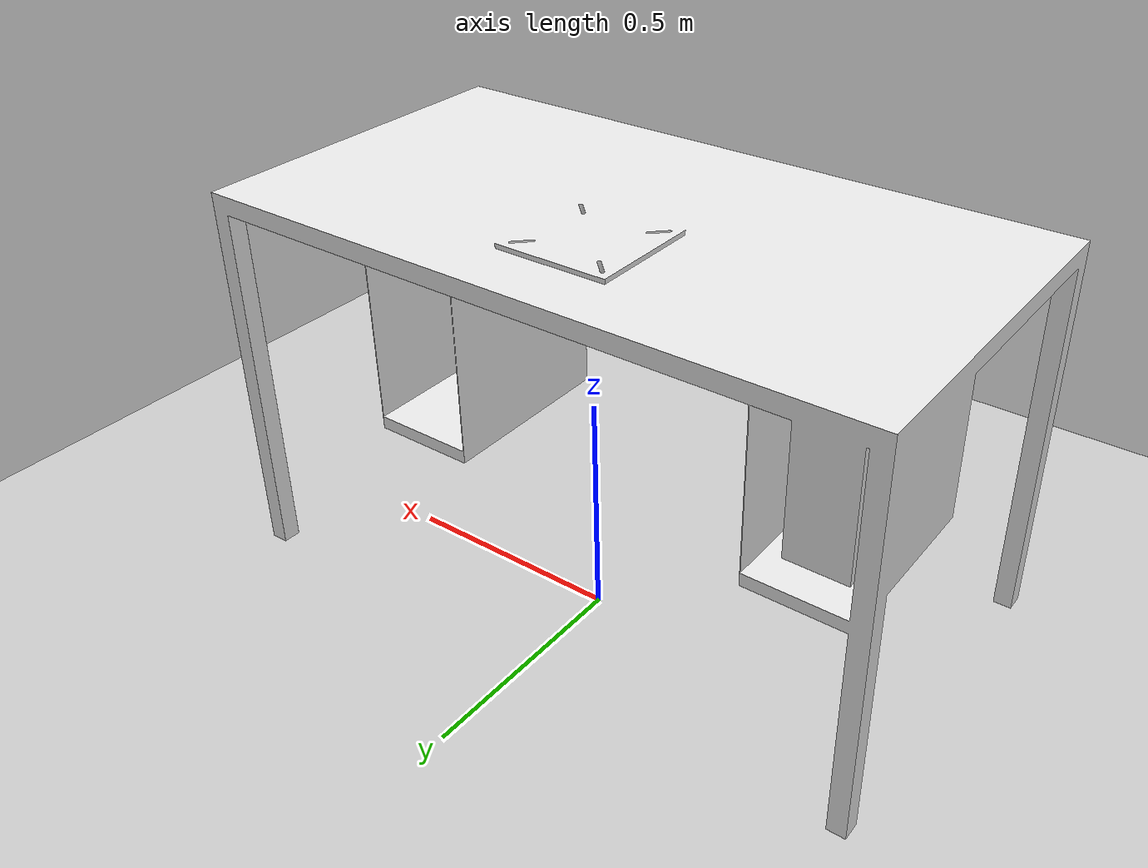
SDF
<?xml version="1.0" ?>
<sdf version="1.5">
  <world name="my_world">
    <include>
      <uri>model://ground_plane</uri>
    </include>

    <model name="mesa">
      <pose>0.755 0.26 0 0 0 3.1416</pose>
      <static>true</static>
      <link name="base_link">
        <inertial>
          <mass>1.0</mass>
          <inertia>
            <ixx>0.166666666667</ixx>
            <ixy>0.0</ixy>
            <ixz>0.0</ixz>
            <iyy>0.166666666667</iyy>
            <iyz>0.0</iyz>
            <izz>0.166666666667</izz>
          </inertia>
        </inertial>
        <visual name="visual">
          <geometry>
             <mesh>
               <uri>model://mesa/meshes/mesaDobot.stl</uri>
             <scale>0.001 0.001 0.001</scale>
          </mesh>
          </geometry>
          <material>
            <script>
              <uri>file://media/materials/scripts/gazebo.material</uri>
              <name>Gazebo/White</name>
            </script>
          </material>
        </visual>
        <collision name="collision">
          <pose>0.75 0.4 0.43 0 0 1.57</pose>
          <geometry>
            <box>
              <size>0.80 1.5 0.86</size>
            </box>
          </geometry>
        </collision>
      </link>
    </model>

    <light name='sun' type='directional'>
      <cast_shadows>1</cast_shadows>
      <pose>0 0 10 0 0 0</pose>
      <diffuse>0.8 0.8 0.8 1</diffuse>
      <specular>0.2 0.2 0.2 1</specular>
      <attenuation>
        <range>1000</range>
        <constant>0.9</constant>
        <linear>0.01</linear>
        <quadratic>0.001</quadratic>
      </attenuation>
      <direction>-0.5 0.1 -0.9</direction>
    </light>
  </world>
</sdf>
